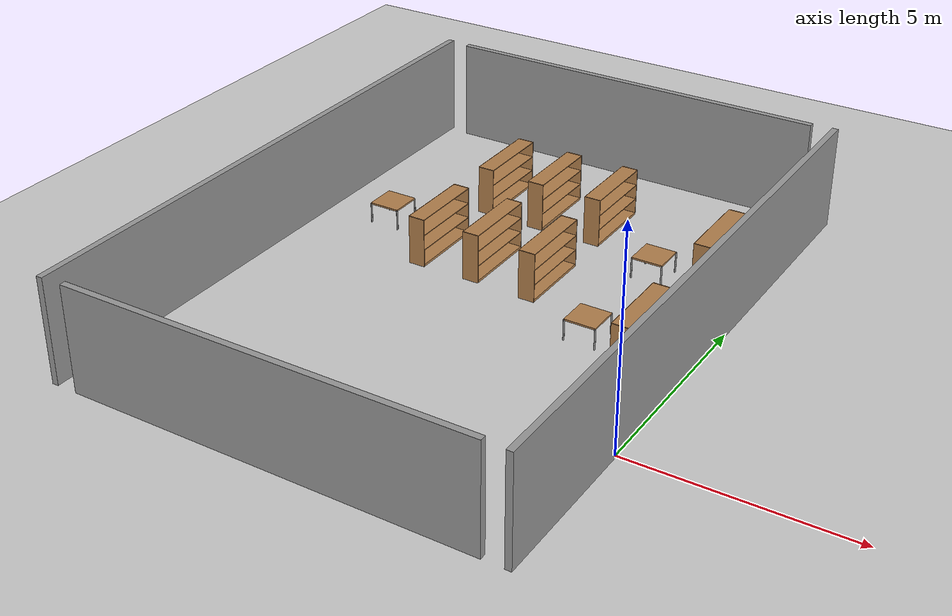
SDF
<sdf version="1.6">
 <world name="default">
  <model name="ground_plane">
   <static>1</static>
   <link name="link">
    <collision name="collision">
     <geometry><plane><normal>0 0 1</normal><size>100 100</size></plane></geometry>
     <surface><friction><ode><mu>100</mu><mu2>50</mu2></ode></friction></surface>
    </collision>
    <visual name="visual">
     <cast_shadows>0</cast_shadows>
     <geometry><plane><normal>0 0 1</normal><size>100 100</size></plane></geometry>
     <material>
      <script><uri>file://media/materials/scripts/gazebo.material</uri><name>Gazebo/Grey</name></script>
     </material>
    </visual>
   </link>
  </model>
  <model name="table_2">
   <static>1</static>
   <link name="link">
    <collision name="surface">
     <pose>0 0 0.5 0 -0 0</pose>
     <geometry><box><size>0.75 0.75 0.04</size></box></geometry>
    </collision>
    <visual name="visual1">
     <pose>0 0 0.5 0 -0 0</pose>
     <geometry><box><size>0.75 0.75 0.04</size></box></geometry>
     <material>
      <script><uri>file://media/materials/scripts/gazebo.material</uri><name>Gazebo/Wood</name></script>
     </material>
    </visual>
    <collision name="front_left_leg">
     <pose>0.37 0.37 0.25 0 -0 0</pose>
     <geometry><cylinder><radius>0.02</radius><length>0.5</length></cylinder></geometry>
    </collision>
    <visual name="front_left_leg">
     <pose>0.37 0.37 0.25 0 -0 0</pose>
     <geometry><cylinder><radius>0.02</radius><length>0.5</length></cylinder></geometry>
     <material>
      <script><uri>file://media/materials/scripts/gazebo.material</uri><name>Gazebo/Grey</name></script>
     </material>
    </visual>
    <collision name="front_right_leg">
     <pose>0.37 -0.37 0.25 0 -0 0</pose>
     <geometry><cylinder><radius>0.02</radius><length>0.5</length></cylinder></geometry>
    </collision>
    <visual name="front_right_leg">
     <pose>0.37 -0.37 0.25 0 -0 0</pose>
     <geometry><cylinder><radius>0.02</radius><length>0.5</length></cylinder></geometry>
     <material>
      <script><uri>file://media/materials/scripts/gazebo.material</uri><name>Gazebo/Grey</name></script>
     </material>
    </visual>
    <collision name="back_right_leg">
     <pose>-0.37 -0.37 0.25 0 -0 0</pose>
     <geometry><cylinder><radius>0.02</radius><length>0.5</length></cylinder></geometry>
    </collision>
    <visual name="back_right_leg">
     <pose>-0.37 -0.37 0.25 0 -0 0</pose>
     <geometry><cylinder><radius>0.02</radius><length>0.5</length></cylinder></geometry>
     <material>
      <script><uri>file://media/materials/scripts/gazebo.material</uri><name>Gazebo/Grey</name></script>
     </material>
    </visual>
    <collision name="back_left_leg">
     <pose>-0.37 0.37 0.25 0 -0 0</pose>
     <geometry><cylinder><radius>0.02</radius><length>0.5</length></cylinder></geometry>
    </collision>
    <visual name="back_left_leg">
     <pose>-0.37 0.37 0.25 0 -0 0</pose>
     <geometry><cylinder><radius>0.02</radius><length>0.5</length></cylinder></geometry>
     <material>
      <script><uri>file://media/materials/scripts/gazebo.material</uri><name>Gazebo/Grey</name></script>
     </material>
    </visual>
    <velocity_decay><linear>0</linear><angular>0</angular></velocity_decay>
   </link>
   <pose>-2.43615 3.39841 0 0 -0 0</pose>
  </model>
  <model name="table_3">
   <static>1</static>
   <link name="link">
    <collision name="surface">
     <pose>0 0 0.5 0 -0 0</pose>
     <geometry><box><size>0.75 0.75 0.04</size></box></geometry>
    </collision>
    <visual name="visual1">
     <pose>0 0 0.5 0 -0 0</pose>
     <geometry><box><size>0.75 0.75 0.04</size></box></geometry>
     <material>
      <script><uri>file://media/materials/scripts/gazebo.material</uri><name>Gazebo/Wood</name></script>
     </material>
    </visual>
    <collision name="front_left_leg">
     <pose>0.37 0.37 0.25 0 -0 0</pose>
     <geometry><cylinder><radius>0.02</radius><length>0.5</length></cylinder></geometry>
    </collision>
    <visual name="front_left_leg">
     <pose>0.37 0.37 0.25 0 -0 0</pose>
     <geometry><cylinder><radius>0.02</radius><length>0.5</length></cylinder></geometry>
     <material>
      <script><uri>file://media/materials/scripts/gazebo.material</uri><name>Gazebo/Grey</name></script>
     </material>
    </visual>
    <collision name="front_right_leg">
     <pose>0.37 -0.37 0.25 0 -0 0</pose>
     <geometry><cylinder><radius>0.02</radius><length>0.5</length></cylinder></geometry>
    </collision>
    <visual name="front_right_leg">
     <pose>0.37 -0.37 0.25 0 -0 0</pose>
     <geometry><cylinder><radius>0.02</radius><length>0.5</length></cylinder></geometry>
     <material>
      <script><uri>file://media/materials/scripts/gazebo.material</uri><name>Gazebo/Grey</name></script>
     </material>
    </visual>
    <collision name="back_right_leg">
     <pose>-0.37 -0.37 0.25 0 -0 0</pose>
     <geometry><cylinder><radius>0.02</radius><length>0.5</length></cylinder></geometry>
    </collision>
    <visual name="back_right_leg">
     <pose>-0.37 -0.37 0.25 0 -0 0</pose>
     <geometry><cylinder><radius>0.02</radius><length>0.5</length></cylinder></geometry>
     <material>
      <script><uri>file://media/materials/scripts/gazebo.material</uri><name>Gazebo/Grey</name></script>
     </material>
    </visual>
    <collision name="back_left_leg">
     <pose>-0.37 0.37 0.25 0 -0 0</pose>
     <geometry><cylinder><radius>0.02</radius><length>0.5</length></cylinder></geometry>
    </collision>
    <visual name="back_left_leg">
     <pose>-0.37 0.37 0.25 0 -0 0</pose>
     <geometry><cylinder><radius>0.02</radius><length>0.5</length></cylinder></geometry>
     <material>
      <script><uri>file://media/materials/scripts/gazebo.material</uri><name>Gazebo/Grey</name></script>
     </material>
    </visual>
    <velocity_decay><linear>0</linear><angular>0</angular></velocity_decay>
   </link>
   <pose>-2.42969 6.50991 0 0 -0 0</pose>
  </model>
  <model name="table_6">
   <static>1</static>
   <link name="link">
    <collision name="surface">
     <pose>0 0 0.5 0 -0 0</pose>
     <geometry><box><size>0.75 0.75 0.04</size></box></geometry>
    </collision>
    <visual name="visual1">
     <pose>0 0 0.5 0 -0 0</pose>
     <geometry><box><size>0.75 0.75 0.04</size></box></geometry>
     <material>
      <script><uri>file://media/materials/scripts/gazebo.material</uri><name>Gazebo/Wood</name></script>
     </material>
    </visual>
    <collision name="front_left_leg">
     <pose>0.37 0.37 0.25 0 -0 0</pose>
     <geometry><cylinder><radius>0.02</radius><length>0.5</length></cylinder></geometry>
    </collision>
    <visual name="front_left_leg">
     <pose>0.37 0.37 0.25 0 -0 0</pose>
     <geometry><cylinder><radius>0.02</radius><length>0.5</length></cylinder></geometry>
     <material>
      <script><uri>file://media/materials/scripts/gazebo.material</uri><name>Gazebo/Grey</name></script>
     </material>
    </visual>
    <collision name="front_right_leg">
     <pose>0.37 -0.37 0.25 0 -0 0</pose>
     <geometry><cylinder><radius>0.02</radius><length>0.5</length></cylinder></geometry>
    </collision>
    <visual name="front_right_leg">
     <pose>0.37 -0.37 0.25 0 -0 0</pose>
     <geometry><cylinder><radius>0.02</radius><length>0.5</length></cylinder></geometry>
     <material>
      <script><uri>file://media/materials/scripts/gazebo.material</uri><name>Gazebo/Grey</name></script>
     </material>
    </visual>
    <collision name="back_right_leg">
     <pose>-0.37 -0.37 0.25 0 -0 0</pose>
     <geometry><cylinder><radius>0.02</radius><length>0.5</length></cylinder></geometry>
    </collision>
    <visual name="back_right_leg">
     <pose>-0.37 -0.37 0.25 0 -0 0</pose>
     <geometry><cylinder><radius>0.02</radius><length>0.5</length></cylinder></geometry>
     <material>
      <script><uri>file://media/materials/scripts/gazebo.material</uri><name>Gazebo/Grey</name></script>
     </material>
    </visual>
    <collision name="back_left_leg">
     <pose>-0.37 0.37 0.25 0 -0 0</pose>
     <geometry><cylinder><radius>0.02</radius><length>0.5</length></cylinder></geometry>
    </collision>
    <visual name="back_left_leg">
     <pose>-0.37 0.37 0.25 0 -0 0</pose>
     <geometry><cylinder><radius>0.02</radius><length>0.5</length></cylinder></geometry>
     <material>
      <script><uri>file://media/materials/scripts/gazebo.material</uri><name>Gazebo/Grey</name></script>
     </material>
    </visual>
    <velocity_decay><linear>0</linear><angular>0</angular></velocity_decay>
   </link>
   <pose>-8.9174 5.6033 0 0 -0 0</pose>
  </model>
  <model name="walls">
   <pose>-5.34 3.52 0 0 -0 0</pose>
   <link name="wall_1">
    <collision name="wall_1_Collision">
     <geometry><box><size>9.5 0.15 2.5</size></box></geometry>
     <pose>0 0 1.25 0 -0 0</pose>
    </collision>
    <visual name="wall_1_Visual">
     <pose>0 0 1.25 0 -0 0</pose>
     <geometry><box><size>9.5 0.15 2.5</size></box></geometry>
     <material>
      <script><uri>file://media/materials/scripts/gazebo.material</uri><name>Gazebo/Grey</name></script>
      <ambient>1 1 1 1</ambient>
     </material>
     <meta><layer>0</layer></meta>
    </visual>
    <pose>0 -7.3 0 0 -0 0</pose>
   </link>
   <link name="wall_2">
    <collision name="wall_2_Collision">
     <geometry><box><size>14.75 0.15 2.5</size></box></geometry>
     <pose>0 0 1.25 0 -0 0</pose>
    </collision>
    <visual name="wall_2_Visual">
     <pose>0 0 1.25 0 -0 0</pose>
     <geometry><box><size>14.75 0.15 2.5</size></box></geometry>
     <material>
      <script><uri>file://media/materials/scripts/gazebo.material</uri><name>Gazebo/Grey</name></script>
      <ambient>1 1 1 1</ambient>
     </material>
     <meta><layer>0</layer></meta>
    </visual>
    <pose>5.3 0 0 0 -0 1.5708</pose>
   </link>
   <link name="wall_3">
    <collision name="wall_3_Collision">
     <geometry><box><size>9.5 0.15 2.5</size></box></geometry>
     <pose>0 0 1.25 0 -0 0</pose>
    </collision>
    <visual name="wall_3_Visual">
     <pose>0 0 1.25 0 -0 0</pose>
     <geometry><box><size>9.5 0.15 2.5</size></box></geometry>
     <material>
      <script><uri>file://media/materials/scripts/gazebo.material</uri><name>Gazebo/Grey</name></script>
      <ambient>1 1 1 1</ambient>
     </material>
     <meta><layer>0</layer></meta>
    </visual>
    <pose>0 7.3 0 0 -0 3.14159</pose>
   </link>
   <link name="wall_4">
    <collision name="wall_4_Collision">
     <geometry><box><size>14.75 0.15 2.5</size></box></geometry>
     <pose>0 0 1.25 0 -0 0</pose>
    </collision>
    <visual name="wall_4_Visual">
     <pose>0 0 1.25 0 -0 0</pose>
     <geometry><box><size>14.75 0.15 2.5</size></box></geometry>
     <material>
      <script><uri>file://media/materials/scripts/gazebo.material</uri><name>Gazebo/Grey</name></script>
      <ambient>1 1 1 1</ambient>
     </material>
     <meta><layer>0</layer></meta>
    </visual>
    <pose>-5.3 0 0 0 -0 -1.5708</pose>
   </link>
   <static>1</static>
  </model>
  <model name="bookshelf_5">
   <static>1</static>
   <link name="link">
    <inertial><mass>1</mass></inertial>
    <collision name="back">
     <pose>0 0.005 0.6 0 -0 0</pose>
     <geometry><box><size>1.9 0.01 1.2</size></box></geometry>
    </collision>
    <visual name="back">
     <pose>0 0.005 0.6 0 -0 0</pose>
     <geometry><box><size>1.9 0.01 1.2</size></box></geometry>
     <material>
      <script><uri>file://media/materials/scripts/gazebo.material</uri><name>Gazebo/Wood</name></script>
     </material>
    </visual>
    <collision name="left_side">
     <pose>0.95 -0.195 0.6 0 -0 0</pose>
     <geometry><box><size>0.02 0.4 1.2</size></box></geometry>
    </collision>
    <visual name="left_side">
     <pose>0.95 -0.195 0.6 0 -0 0</pose>
     <geometry><box><size>0.02 0.4 1.2</size></box></geometry>
     <material>
      <script><uri>file://media/materials/scripts/gazebo.material</uri><name>Gazebo/Wood</name></script>
     </material>
    </visual>
    <collision name="right_side">
     <pose>-0.95 -0.195 0.6 0 -0 0</pose>
     <geometry><box><size>0.02 0.4 1.2</size></box></geometry>
    </collision>
    <visual name="right_side">
     <pose>-0.95 -0.195 0.6 0 -0 0</pose>
     <geometry><box><size>0.02 0.4 1.2</size></box></geometry>
     <material>
      <script><uri>file://media/materials/scripts/gazebo.material</uri><name>Gazebo/Wood</name></script>
     </material>
    </visual>
    <collision name="bottom">
     <pose>0 -0.195 0.03 0 -0 0</pose>
     <geometry><box><size>1.88 0.4 0.06</size></box></geometry>
    </collision>
    <visual name="bottom">
     <pose>0 -0.195 0.03 0 -0 0</pose>
     <geometry><box><size>1.88 0.4 0.06</size></box></geometry>
     <material>
      <script><uri>file://media/materials/scripts/gazebo.material</uri><name>Gazebo/Wood</name></script>
     </material>
    </visual>
    <collision name="top">
     <pose>0 -0.195 1.19 0 -0 0</pose>
     <geometry><box><size>1.88 0.4 0.02</size></box></geometry>
    </collision>
    <visual name="top">
     <pose>0 -0.195 1.19 0 -0 0</pose>
     <geometry><box><size>1.88 0.4 0.02</size></box></geometry>
     <material>
      <script><uri>file://media/materials/scripts/gazebo.material</uri><name>Gazebo/Wood</name></script>
     </material>
    </visual>
    <collision name="low_shelf">
     <pose>0 -0.195 0.43 0 -0 0</pose>
     <geometry><box><size>1.88 0.4 0.02</size></box></geometry>
    </collision>
    <visual name="low_shelf">
     <pose>0 -0.195 0.43 0 -0 0</pose>
     <geometry><box><size>1.88 0.4 0.02</size></box></geometry>
     <material>
      <script><uri>file://media/materials/scripts/gazebo.material</uri><name>Gazebo/Wood</name></script>
     </material>
    </visual>
    <collision name="high_shelf">
     <pose>0 -0.195 0.8 0 -0 0</pose>
     <geometry><box><size>1.88 0.4 0.02</size></box></geometry>
    </collision>
    <visual name="high_shelf">
     <pose>0 -0.195 0.8 0 -0 0</pose>
     <geometry><box><size>1.88 0.4 0.02</size></box></geometry>
     <material>
      <script><uri>file://media/materials/scripts/gazebo.material</uri><name>Gazebo/Wood</name></script>
     </material>
    </visual>
   </link>
   <pose>-4.49483 4.97096 0 0 0.002317 1.57295</pose>
  </model>
  <model name="bookshelf_7">
   <static>1</static>
   <link name="link">
    <inertial><mass>1</mass></inertial>
    <collision name="back">
     <pose>0 0.005 0.6 0 -0 0</pose>
     <geometry><box><size>1.9 0.01 1.2</size></box></geometry>
    </collision>
    <visual name="back">
     <pose>0 0.005 0.6 0 -0 0</pose>
     <geometry><box><size>1.9 0.01 1.2</size></box></geometry>
     <material>
      <script><uri>file://media/materials/scripts/gazebo.material</uri><name>Gazebo/Wood</name></script>
     </material>
    </visual>
    <collision name="left_side">
     <pose>0.95 -0.195 0.6 0 -0 0</pose>
     <geometry><box><size>0.02 0.4 1.2</size></box></geometry>
    </collision>
    <visual name="left_side">
     <pose>0.95 -0.195 0.6 0 -0 0</pose>
     <geometry><box><size>0.02 0.4 1.2</size></box></geometry>
     <material>
      <script><uri>file://media/materials/scripts/gazebo.material</uri><name>Gazebo/Wood</name></script>
     </material>
    </visual>
    <collision name="right_side">
     <pose>-0.95 -0.195 0.6 0 -0 0</pose>
     <geometry><box><size>0.02 0.4 1.2</size></box></geometry>
    </collision>
    <visual name="right_side">
     <pose>-0.95 -0.195 0.6 0 -0 0</pose>
     <geometry><box><size>0.02 0.4 1.2</size></box></geometry>
     <material>
      <script><uri>file://media/materials/scripts/gazebo.material</uri><name>Gazebo/Wood</name></script>
     </material>
    </visual>
    <collision name="bottom">
     <pose>0 -0.195 0.03 0 -0 0</pose>
     <geometry><box><size>1.88 0.4 0.06</size></box></geometry>
    </collision>
    <visual name="bottom">
     <pose>0 -0.195 0.03 0 -0 0</pose>
     <geometry><box><size>1.88 0.4 0.06</size></box></geometry>
     <material>
      <script><uri>file://media/materials/scripts/gazebo.material</uri><name>Gazebo/Wood</name></script>
     </material>
    </visual>
    <collision name="top">
     <pose>0 -0.195 1.19 0 -0 0</pose>
     <geometry><box><size>1.88 0.4 0.02</size></box></geometry>
    </collision>
    <visual name="top">
     <pose>0 -0.195 1.19 0 -0 0</pose>
     <geometry><box><size>1.88 0.4 0.02</size></box></geometry>
     <material>
      <script><uri>file://media/materials/scripts/gazebo.material</uri><name>Gazebo/Wood</name></script>
     </material>
    </visual>
    <collision name="low_shelf">
     <pose>0 -0.195 0.43 0 -0 0</pose>
     <geometry><box><size>1.88 0.4 0.02</size></box></geometry>
    </collision>
    <visual name="low_shelf">
     <pose>0 -0.195 0.43 0 -0 0</pose>
     <geometry><box><size>1.88 0.4 0.02</size></box></geometry>
     <material>
      <script><uri>file://media/materials/scripts/gazebo.material</uri><name>Gazebo/Wood</name></script>
     </material>
    </visual>
    <collision name="high_shelf">
     <pose>0 -0.195 0.8 0 -0 0</pose>
     <geometry><box><size>1.88 0.4 0.02</size></box></geometry>
    </collision>
    <visual name="high_shelf">
     <pose>0 -0.195 0.8 0 -0 0</pose>
     <geometry><box><size>1.88 0.4 0.02</size></box></geometry>
     <material>
      <script><uri>file://media/materials/scripts/gazebo.material</uri><name>Gazebo/Wood</name></script>
     </material>
    </visual>
   </link>
   <pose>-4.49264 7.96878 0 0 0.002317 1.57295</pose>
  </model>
  <model name="bookshelf_8">
   <static>1</static>
   <link name="link">
    <inertial><mass>1</mass></inertial>
    <collision name="back">
     <pose>0 0.005 0.6 0 -0 0</pose>
     <geometry><box><size>1.9 0.01 1.2</size></box></geometry>
    </collision>
    <visual name="back">
     <pose>0 0.005 0.6 0 -0 0</pose>
     <geometry><box><size>1.9 0.01 1.2</size></box></geometry>
     <material>
      <script><uri>file://media/materials/scripts/gazebo.material</uri><name>Gazebo/Wood</name></script>
     </material>
    </visual>
    <collision name="left_side">
     <pose>0.95 -0.195 0.6 0 -0 0</pose>
     <geometry><box><size>0.02 0.4 1.2</size></box></geometry>
    </collision>
    <visual name="left_side">
     <pose>0.95 -0.195 0.6 0 -0 0</pose>
     <geometry><box><size>0.02 0.4 1.2</size></box></geometry>
     <material>
      <script><uri>file://media/materials/scripts/gazebo.material</uri><name>Gazebo/Wood</name></script>
     </material>
    </visual>
    <collision name="right_side">
     <pose>-0.95 -0.195 0.6 0 -0 0</pose>
     <geometry><box><size>0.02 0.4 1.2</size></box></geometry>
    </collision>
    <visual name="right_side">
     <pose>-0.95 -0.195 0.6 0 -0 0</pose>
     <geometry><box><size>0.02 0.4 1.2</size></box></geometry>
     <material>
      <script><uri>file://media/materials/scripts/gazebo.material</uri><name>Gazebo/Wood</name></script>
     </material>
    </visual>
    <collision name="bottom">
     <pose>0 -0.195 0.03 0 -0 0</pose>
     <geometry><box><size>1.88 0.4 0.06</size></box></geometry>
    </collision>
    <visual name="bottom">
     <pose>0 -0.195 0.03 0 -0 0</pose>
     <geometry><box><size>1.88 0.4 0.06</size></box></geometry>
     <material>
      <script><uri>file://media/materials/scripts/gazebo.material</uri><name>Gazebo/Wood</name></script>
     </material>
    </visual>
    <collision name="top">
     <pose>0 -0.195 1.19 0 -0 0</pose>
     <geometry><box><size>1.88 0.4 0.02</size></box></geometry>
    </collision>
    <visual name="top">
     <pose>0 -0.195 1.19 0 -0 0</pose>
     <geometry><box><size>1.88 0.4 0.02</size></box></geometry>
     <material>
      <script><uri>file://media/materials/scripts/gazebo.material</uri><name>Gazebo/Wood</name></script>
     </material>
    </visual>
    <collision name="low_shelf">
     <pose>0 -0.195 0.43 0 -0 0</pose>
     <geometry><box><size>1.88 0.4 0.02</size></box></geometry>
    </collision>
    <visual name="low_shelf">
     <pose>0 -0.195 0.43 0 -0 0</pose>
     <geometry><box><size>1.88 0.4 0.02</size></box></geometry>
     <material>
      <script><uri>file://media/materials/scripts/gazebo.material</uri><name>Gazebo/Wood</name></script>
     </material>
    </visual>
    <collision name="high_shelf">
     <pose>0 -0.195 0.8 0 -0 0</pose>
     <geometry><box><size>1.88 0.4 0.02</size></box></geometry>
    </collision>
    <visual name="high_shelf">
     <pose>0 -0.195 0.8 0 -0 0</pose>
     <geometry><box><size>1.88 0.4 0.02</size></box></geometry>
     <material>
      <script><uri>file://media/materials/scripts/gazebo.material</uri><name>Gazebo/Wood</name></script>
     </material>
    </visual>
   </link>
   <pose>-6.00199 7.96031 0 0 0.002317 1.57295</pose>
  </model>
  <model name="bookshelf_9">
   <static>1</static>
   <link name="link">
    <inertial><mass>1</mass></inertial>
    <collision name="back">
     <pose>0 0.005 0.6 0 -0 0</pose>
     <geometry><box><size>1.9 0.01 1.2</size></box></geometry>
    </collision>
    <visual name="back">
     <pose>0 0.005 0.6 0 -0 0</pose>
     <geometry><box><size>1.9 0.01 1.2</size></box></geometry>
     <material>
      <script><uri>file://media/materials/scripts/gazebo.material</uri><name>Gazebo/Wood</name></script>
     </material>
    </visual>
    <collision name="left_side">
     <pose>0.95 -0.195 0.6 0 -0 0</pose>
     <geometry><box><size>0.02 0.4 1.2</size></box></geometry>
    </collision>
    <visual name="left_side">
     <pose>0.95 -0.195 0.6 0 -0 0</pose>
     <geometry><box><size>0.02 0.4 1.2</size></box></geometry>
     <material>
      <script><uri>file://media/materials/scripts/gazebo.material</uri><name>Gazebo/Wood</name></script>
     </material>
    </visual>
    <collision name="right_side">
     <pose>-0.95 -0.195 0.6 0 -0 0</pose>
     <geometry><box><size>0.02 0.4 1.2</size></box></geometry>
    </collision>
    <visual name="right_side">
     <pose>-0.95 -0.195 0.6 0 -0 0</pose>
     <geometry><box><size>0.02 0.4 1.2</size></box></geometry>
     <material>
      <script><uri>file://media/materials/scripts/gazebo.material</uri><name>Gazebo/Wood</name></script>
     </material>
    </visual>
    <collision name="bottom">
     <pose>0 -0.195 0.03 0 -0 0</pose>
     <geometry><box><size>1.88 0.4 0.06</size></box></geometry>
    </collision>
    <visual name="bottom">
     <pose>0 -0.195 0.03 0 -0 0</pose>
     <geometry><box><size>1.88 0.4 0.06</size></box></geometry>
     <material>
      <script><uri>file://media/materials/scripts/gazebo.material</uri><name>Gazebo/Wood</name></script>
     </material>
    </visual>
    <collision name="top">
     <pose>0 -0.195 1.19 0 -0 0</pose>
     <geometry><box><size>1.88 0.4 0.02</size></box></geometry>
    </collision>
    <visual name="top">
     <pose>0 -0.195 1.19 0 -0 0</pose>
     <geometry><box><size>1.88 0.4 0.02</size></box></geometry>
     <material>
      <script><uri>file://media/materials/scripts/gazebo.material</uri><name>Gazebo/Wood</name></script>
     </material>
    </visual>
    <collision name="low_shelf">
     <pose>0 -0.195 0.43 0 -0 0</pose>
     <geometry><box><size>1.88 0.4 0.02</size></box></geometry>
    </collision>
    <visual name="low_shelf">
     <pose>0 -0.195 0.43 0 -0 0</pose>
     <geometry><box><size>1.88 0.4 0.02</size></box></geometry>
     <material>
      <script><uri>file://media/materials/scripts/gazebo.material</uri><name>Gazebo/Wood</name></script>
     </material>
    </visual>
    <collision name="high_shelf">
     <pose>0 -0.195 0.8 0 -0 0</pose>
     <geometry><box><size>1.88 0.4 0.02</size></box></geometry>
    </collision>
    <visual name="high_shelf">
     <pose>0 -0.195 0.8 0 -0 0</pose>
     <geometry><box><size>1.88 0.4 0.02</size></box></geometry>
     <material>
      <script><uri>file://media/materials/scripts/gazebo.material</uri><name>Gazebo/Wood</name></script>
     </material>
    </visual>
   </link>
   <pose>-5.97352 5.03693 0 0 0.002317 1.57295</pose>
  </model>
  <model name="bookshelf_11">
   <static>1</static>
   <link name="link">
    <inertial><mass>1</mass></inertial>
    <collision name="back">
     <pose>0 0.005 0.6 0 -0 0</pose>
     <geometry><box><size>1.9 0.01 1.2</size></box></geometry>
    </collision>
    <visual name="back">
     <pose>0 0.005 0.6 0 -0 0</pose>
     <geometry><box><size>1.9 0.01 1.2</size></box></geometry>
     <material>
      <script><uri>file://media/materials/scripts/gazebo.material</uri><name>Gazebo/Wood</name></script>
     </material>
    </visual>
    <collision name="left_side">
     <pose>0.95 -0.195 0.6 0 -0 0</pose>
     <geometry><box><size>0.02 0.4 1.2</size></box></geometry>
    </collision>
    <visual name="left_side">
     <pose>0.95 -0.195 0.6 0 -0 0</pose>
     <geometry><box><size>0.02 0.4 1.2</size></box></geometry>
     <material>
      <script><uri>file://media/materials/scripts/gazebo.material</uri><name>Gazebo/Wood</name></script>
     </material>
    </visual>
    <collision name="right_side">
     <pose>-0.95 -0.195 0.6 0 -0 0</pose>
     <geometry><box><size>0.02 0.4 1.2</size></box></geometry>
    </collision>
    <visual name="right_side">
     <pose>-0.95 -0.195 0.6 0 -0 0</pose>
     <geometry><box><size>0.02 0.4 1.2</size></box></geometry>
     <material>
      <script><uri>file://media/materials/scripts/gazebo.material</uri><name>Gazebo/Wood</name></script>
     </material>
    </visual>
    <collision name="bottom">
     <pose>0 -0.195 0.03 0 -0 0</pose>
     <geometry><box><size>1.88 0.4 0.06</size></box></geometry>
    </collision>
    <visual name="bottom">
     <pose>0 -0.195 0.03 0 -0 0</pose>
     <geometry><box><size>1.88 0.4 0.06</size></box></geometry>
     <material>
      <script><uri>file://media/materials/scripts/gazebo.material</uri><name>Gazebo/Wood</name></script>
     </material>
    </visual>
    <collision name="top">
     <pose>0 -0.195 1.19 0 -0 0</pose>
     <geometry><box><size>1.88 0.4 0.02</size></box></geometry>
    </collision>
    <visual name="top">
     <pose>0 -0.195 1.19 0 -0 0</pose>
     <geometry><box><size>1.88 0.4 0.02</size></box></geometry>
     <material>
      <script><uri>file://media/materials/scripts/gazebo.material</uri><name>Gazebo/Wood</name></script>
     </material>
    </visual>
    <collision name="low_shelf">
     <pose>0 -0.195 0.43 0 -0 0</pose>
     <geometry><box><size>1.88 0.4 0.02</size></box></geometry>
    </collision>
    <visual name="low_shelf">
     <pose>0 -0.195 0.43 0 -0 0</pose>
     <geometry><box><size>1.88 0.4 0.02</size></box></geometry>
     <material>
      <script><uri>file://media/materials/scripts/gazebo.material</uri><name>Gazebo/Wood</name></script>
     </material>
    </visual>
    <collision name="high_shelf">
     <pose>0 -0.195 0.8 0 -0 0</pose>
     <geometry><box><size>1.88 0.4 0.02</size></box></geometry>
    </collision>
    <visual name="high_shelf">
     <pose>0 -0.195 0.8 0 -0 0</pose>
     <geometry><box><size>1.88 0.4 0.02</size></box></geometry>
     <material>
      <script><uri>file://media/materials/scripts/gazebo.material</uri><name>Gazebo/Wood</name></script>
     </material>
    </visual>
   </link>
   <pose>-7.40025 5.01795 0 0 0.002317 1.57295</pose>
  </model>
  <model name="bookshelf_13">
   <static>1</static>
   <link name="link">
    <inertial><mass>1</mass></inertial>
    <collision name="back">
     <pose>0 0.005 0.6 0 -0 0</pose>
     <geometry><box><size>1.9 0.01 1.2</size></box></geometry>
    </collision>
    <visual name="back">
     <pose>0 0.005 0.6 0 -0 0</pose>
     <geometry><box><size>1.9 0.01 1.2</size></box></geometry>
     <material>
      <script><uri>file://media/materials/scripts/gazebo.material</uri><name>Gazebo/Wood</name></script>
     </material>
    </visual>
    <collision name="left_side">
     <pose>0.95 -0.195 0.6 0 -0 0</pose>
     <geometry><box><size>0.02 0.4 1.2</size></box></geometry>
    </collision>
    <visual name="left_side">
     <pose>0.95 -0.195 0.6 0 -0 0</pose>
     <geometry><box><size>0.02 0.4 1.2</size></box></geometry>
     <material>
      <script><uri>file://media/materials/scripts/gazebo.material</uri><name>Gazebo/Wood</name></script>
     </material>
    </visual>
    <collision name="right_side">
     <pose>-0.95 -0.195 0.6 0 -0 0</pose>
     <geometry><box><size>0.02 0.4 1.2</size></box></geometry>
    </collision>
    <visual name="right_side">
     <pose>-0.95 -0.195 0.6 0 -0 0</pose>
     <geometry><box><size>0.02 0.4 1.2</size></box></geometry>
     <material>
      <script><uri>file://media/materials/scripts/gazebo.material</uri><name>Gazebo/Wood</name></script>
     </material>
    </visual>
    <collision name="bottom">
     <pose>0 -0.195 0.03 0 -0 0</pose>
     <geometry><box><size>1.88 0.4 0.06</size></box></geometry>
    </collision>
    <visual name="bottom">
     <pose>0 -0.195 0.03 0 -0 0</pose>
     <geometry><box><size>1.88 0.4 0.06</size></box></geometry>
     <material>
      <script><uri>file://media/materials/scripts/gazebo.material</uri><name>Gazebo/Wood</name></script>
     </material>
    </visual>
    <collision name="top">
     <pose>0 -0.195 1.19 0 -0 0</pose>
     <geometry><box><size>1.88 0.4 0.02</size></box></geometry>
    </collision>
    <visual name="top">
     <pose>0 -0.195 1.19 0 -0 0</pose>
     <geometry><box><size>1.88 0.4 0.02</size></box></geometry>
     <material>
      <script><uri>file://media/materials/scripts/gazebo.material</uri><name>Gazebo/Wood</name></script>
     </material>
    </visual>
    <collision name="low_shelf">
     <pose>0 -0.195 0.43 0 -0 0</pose>
     <geometry><box><size>1.88 0.4 0.02</size></box></geometry>
    </collision>
    <visual name="low_shelf">
     <pose>0 -0.195 0.43 0 -0 0</pose>
     <geometry><box><size>1.88 0.4 0.02</size></box></geometry>
     <material>
      <script><uri>file://media/materials/scripts/gazebo.material</uri><name>Gazebo/Wood</name></script>
     </material>
    </visual>
    <collision name="high_shelf">
     <pose>0 -0.195 0.8 0 -0 0</pose>
     <geometry><box><size>1.88 0.4 0.02</size></box></geometry>
    </collision>
    <visual name="high_shelf">
     <pose>0 -0.195 0.8 0 -0 0</pose>
     <geometry><box><size>1.88 0.4 0.02</size></box></geometry>
     <material>
      <script><uri>file://media/materials/scripts/gazebo.material</uri><name>Gazebo/Wood</name></script>
     </material>
    </visual>
   </link>
   <pose>-7.39555 8.00531 0 0 0.002317 1.57295</pose>
  </model>
  <model name="bookshelf_15">
   <static>1</static>
   <link name="link">
    <inertial><mass>1</mass></inertial>
    <collision name="back">
     <pose>0 0.005 0.6 0 -0 0</pose>
     <geometry><box><size>1.9 0.01 1.2</size></box></geometry>
    </collision>
    <visual name="back">
     <pose>0 0.005 0.6 0 -0 0</pose>
     <geometry><box><size>1.9 0.01 1.2</size></box></geometry>
     <material>
      <script><uri>file://media/materials/scripts/gazebo.material</uri><name>Gazebo/Wood</name></script>
     </material>
    </visual>
    <collision name="left_side">
     <pose>0.95 -0.195 0.6 0 -0 0</pose>
     <geometry><box><size>0.02 0.4 1.2</size></box></geometry>
    </collision>
    <visual name="left_side">
     <pose>0.95 -0.195 0.6 0 -0 0</pose>
     <geometry><box><size>0.02 0.4 1.2</size></box></geometry>
     <material>
      <script><uri>file://media/materials/scripts/gazebo.material</uri><name>Gazebo/Wood</name></script>
     </material>
    </visual>
    <collision name="right_side">
     <pose>-0.95 -0.195 0.6 0 -0 0</pose>
     <geometry><box><size>0.02 0.4 1.2</size></box></geometry>
    </collision>
    <visual name="right_side">
     <pose>-0.95 -0.195 0.6 0 -0 0</pose>
     <geometry><box><size>0.02 0.4 1.2</size></box></geometry>
     <material>
      <script><uri>file://media/materials/scripts/gazebo.material</uri><name>Gazebo/Wood</name></script>
     </material>
    </visual>
    <collision name="bottom">
     <pose>0 -0.195 0.03 0 -0 0</pose>
     <geometry><box><size>1.88 0.4 0.06</size></box></geometry>
    </collision>
    <visual name="bottom">
     <pose>0 -0.195 0.03 0 -0 0</pose>
     <geometry><box><size>1.88 0.4 0.06</size></box></geometry>
     <material>
      <script><uri>file://media/materials/scripts/gazebo.material</uri><name>Gazebo/Wood</name></script>
     </material>
    </visual>
    <collision name="top">
     <pose>0 -0.195 1.19 0 -0 0</pose>
     <geometry><box><size>1.88 0.4 0.02</size></box></geometry>
    </collision>
    <visual name="top">
     <pose>0 -0.195 1.19 0 -0 0</pose>
     <geometry><box><size>1.88 0.4 0.02</size></box></geometry>
     <material>
      <script><uri>file://media/materials/scripts/gazebo.material</uri><name>Gazebo/Wood</name></script>
     </material>
    </visual>
    <collision name="low_shelf">
     <pose>0 -0.195 0.43 0 -0 0</pose>
     <geometry><box><size>1.88 0.4 0.02</size></box></geometry>
    </collision>
    <visual name="low_shelf">
     <pose>0 -0.195 0.43 0 -0 0</pose>
     <geometry><box><size>1.88 0.4 0.02</size></box></geometry>
     <material>
      <script><uri>file://media/materials/scripts/gazebo.material</uri><name>Gazebo/Wood</name></script>
     </material>
    </visual>
    <collision name="high_shelf">
     <pose>0 -0.195 0.8 0 -0 0</pose>
     <geometry><box><size>1.88 0.4 0.02</size></box></geometry>
    </collision>
    <visual name="high_shelf">
     <pose>0 -0.195 0.8 0 -0 0</pose>
     <geometry><box><size>1.88 0.4 0.02</size></box></geometry>
     <material>
      <script><uri>file://media/materials/scripts/gazebo.material</uri><name>Gazebo/Wood</name></script>
     </material>
    </visual>
   </link>
   <pose>-1.3964 3.34952 0 0 0.002317 1.57295</pose>
  </model>
  <model name="bookshelf_16">
   <static>1</static>
   <link name="link">
    <inertial><mass>1</mass></inertial>
    <collision name="back">
     <pose>0 0.005 0.6 0 -0 0</pose>
     <geometry><box><size>1.9 0.01 1.2</size></box></geometry>
    </collision>
    <visual name="back">
     <pose>0 0.005 0.6 0 -0 0</pose>
     <geometry><box><size>1.9 0.01 1.2</size></box></geometry>
     <material>
      <script><uri>file://media/materials/scripts/gazebo.material</uri><name>Gazebo/Wood</name></script>
     </material>
    </visual>
    <collision name="left_side">
     <pose>0.95 -0.195 0.6 0 -0 0</pose>
     <geometry><box><size>0.02 0.4 1.2</size></box></geometry>
    </collision>
    <visual name="left_side">
     <pose>0.95 -0.195 0.6 0 -0 0</pose>
     <geometry><box><size>0.02 0.4 1.2</size></box></geometry>
     <material>
      <script><uri>file://media/materials/scripts/gazebo.material</uri><name>Gazebo/Wood</name></script>
     </material>
    </visual>
    <collision name="right_side">
     <pose>-0.95 -0.195 0.6 0 -0 0</pose>
     <geometry><box><size>0.02 0.4 1.2</size></box></geometry>
    </collision>
    <visual name="right_side">
     <pose>-0.95 -0.195 0.6 0 -0 0</pose>
     <geometry><box><size>0.02 0.4 1.2</size></box></geometry>
     <material>
      <script><uri>file://media/materials/scripts/gazebo.material</uri><name>Gazebo/Wood</name></script>
     </material>
    </visual>
    <collision name="bottom">
     <pose>0 -0.195 0.03 0 -0 0</pose>
     <geometry><box><size>1.88 0.4 0.06</size></box></geometry>
    </collision>
    <visual name="bottom">
     <pose>0 -0.195 0.03 0 -0 0</pose>
     <geometry><box><size>1.88 0.4 0.06</size></box></geometry>
     <material>
      <script><uri>file://media/materials/scripts/gazebo.material</uri><name>Gazebo/Wood</name></script>
     </material>
    </visual>
    <collision name="top">
     <pose>0 -0.195 1.19 0 -0 0</pose>
     <geometry><box><size>1.88 0.4 0.02</size></box></geometry>
    </collision>
    <visual name="top">
     <pose>0 -0.195 1.19 0 -0 0</pose>
     <geometry><box><size>1.88 0.4 0.02</size></box></geometry>
     <material>
      <script><uri>file://media/materials/scripts/gazebo.material</uri><name>Gazebo/Wood</name></script>
     </material>
    </visual>
    <collision name="low_shelf">
     <pose>0 -0.195 0.43 0 -0 0</pose>
     <geometry><box><size>1.88 0.4 0.02</size></box></geometry>
    </collision>
    <visual name="low_shelf">
     <pose>0 -0.195 0.43 0 -0 0</pose>
     <geometry><box><size>1.88 0.4 0.02</size></box></geometry>
     <material>
      <script><uri>file://media/materials/scripts/gazebo.material</uri><name>Gazebo/Wood</name></script>
     </material>
    </visual>
    <collision name="high_shelf">
     <pose>0 -0.195 0.8 0 -0 0</pose>
     <geometry><box><size>1.88 0.4 0.02</size></box></geometry>
    </collision>
    <visual name="high_shelf">
     <pose>0 -0.195 0.8 0 -0 0</pose>
     <geometry><box><size>1.88 0.4 0.02</size></box></geometry>
     <material>
      <script><uri>file://media/materials/scripts/gazebo.material</uri><name>Gazebo/Wood</name></script>
     </material>
    </visual>
   </link>
   <pose>-1.40256 7.25074 0 0 0.002317 1.57295</pose>
  </model>
 </world>
</sdf>
